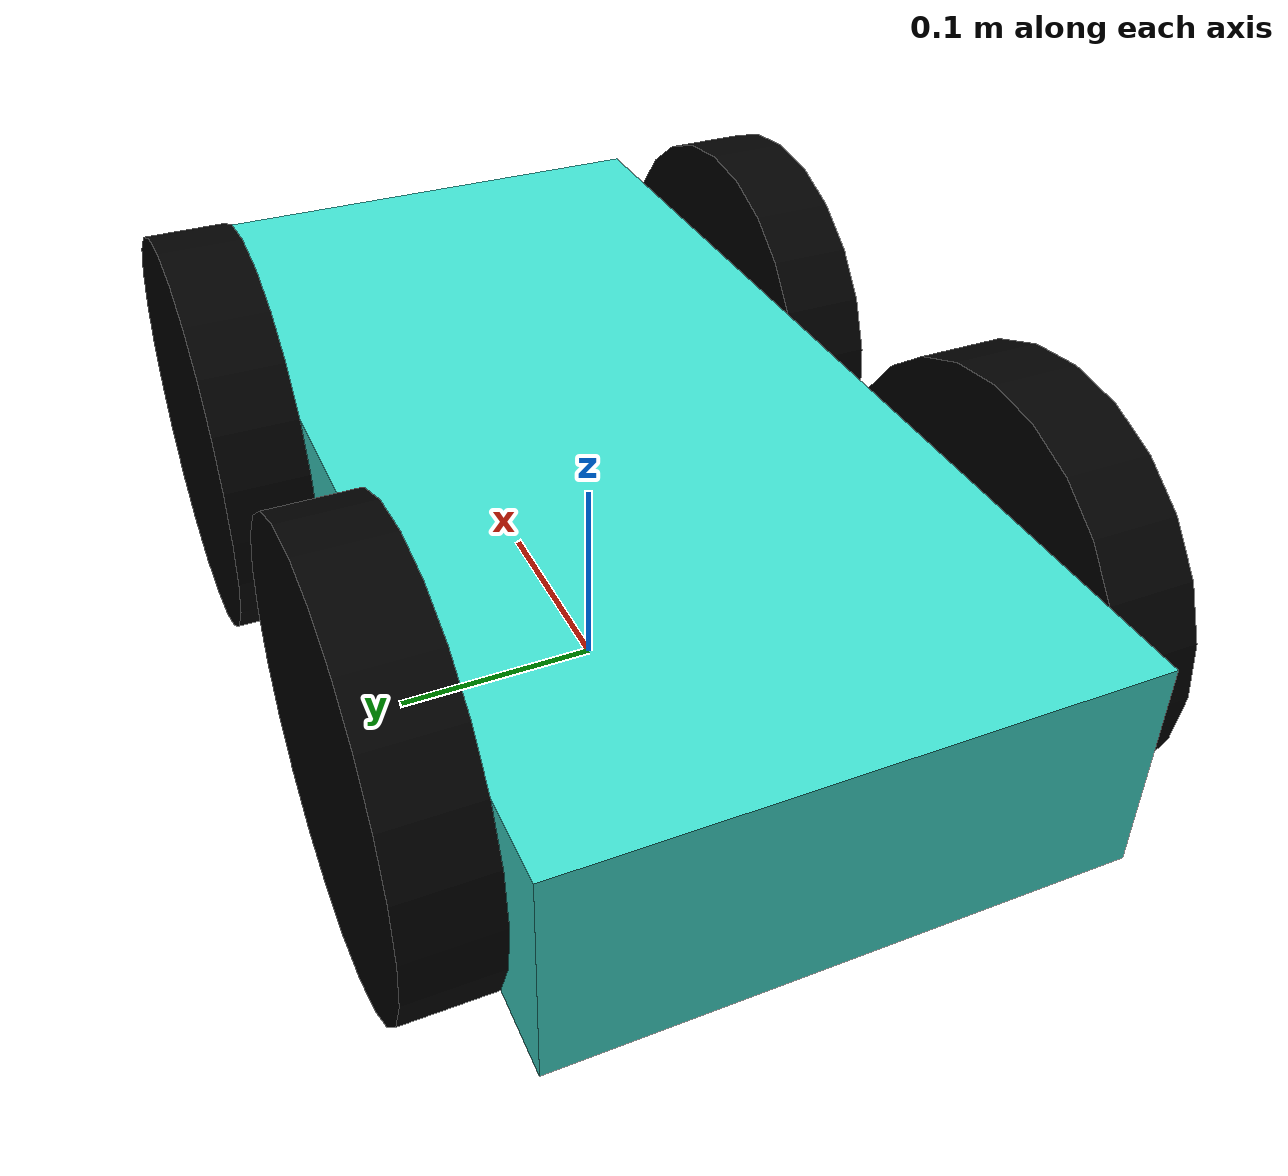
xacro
<?xml version="1.0" encoding="UTF-8"?>

<robot name="navbot" xmlns:xacro="https://www.ros.org/wiki/xacro">

    <xacro:include filename="helper.xacro"/>
    <!-- Base Link-->
    <link name="base_link"/>

    <!-- Chassis Link-->
    <joint name="chassis_joint" type="fixed">
        <parent link="base_link"/>
        <child link="chassis_link"/>
        <origin xyz= "0 0 0.1" rpy="0 0 0"/>
    </joint>

    <link name="chassis_link">
        <visual>
            <origin xyz= "0 0 0" rpy="0 0 0"/>
            <geometry>
                <box size = "0.5 0.25 0.1"/>
            </geometry>
            <material name="turquoise"/>
        </visual>
        <collision>
            <origin xyz= "0 0 0" rpy="0 0 0"/>
            <geometry>
                <box size = "0.5 0.25 0.1"/>
            </geometry>
        </collision>
        <xacro:box_inertial mass= "0.5" x="0.5" y="0.25" z="0.1">
            <origin xyz= "0 0 0" rpy="0 0 0"/>
        </xacro:box_inertial>
    </link>
    <gazebo reference= "chassis_link">
        <material>Gazebo/Turquoise</material>
    </gazebo>

    <!--Front left wheel Link-->

    <joint name="fl_wheel_joint" type="continuous">
        <parent link="chassis_link" />
        <child link="fl_wheel_link" />
        <origin xyz="0.125 0.145 0" rpy="-${pi/2} 0 0"/>
        <axis xyz="0 0 1"/>
    </joint>

    <link name="fl_wheel_link">
        <visual>
            <geometry>
                <cylinder radius="0.1" length="0.04"/>
            </geometry>
            <material name="black"/>
        </visual>
        <collision>
            <geometry>
                <cylinder radius="0.1" length="0.04"/>
            </geometry>
        </collision>
        <xacro:cylinder_inertial mass="0.1" radius="0.1" length="0.04">
            <origin xyz= "0 0 0" rpy="0 0 0"/>
        </xacro:cylinder_inertial>
    </link>
    <gazebo reference= "fl_wheel_link">
        <material>Gazebo/Black</material>
    </gazebo>

    <!--Front right wheel Link-->

    <joint name="fr_wheel_joint" type="continuous">
        <parent link="chassis_link" />
        <child link="fr_wheel_link" />
        <origin xyz="0.125 -0.145 0" rpy="${pi/2} 0 0"/>
        <axis xyz="0 0 -1"/>
    </joint>

    <link name="fr_wheel_link">
        <visual>
            <geometry>
                <cylinder radius="0.1" length="0.04"/>
            </geometry>
            <material name="black"/>
        </visual>
        <collision>
            <geometry>
                <cylinder radius="0.1" length="0.04"/>
            </geometry>
        </collision>
        <xacro:cylinder_inertial mass="0.1" radius="0.1" length="0.04">
            <origin xyz= "0 0 0" rpy="0 0 0"/>
        </xacro:cylinder_inertial>
    </link>
    <gazebo reference= "fr_wheel_link">
        <material>Gazebo/Black</material>
    </gazebo>

    <!--Back left wheel Link-->

    <joint name="bl_wheel_joint" type="continuous">
        <parent link="chassis_link" />
        <child link="bl_wheel_link" />
        <origin xyz="-0.125 0.145 0" rpy="-${pi/2} 0 0"/>
        <axis xyz="0 0 1"/>
    </joint>

    <link name="bl_wheel_link">
        <visual>
            <geometry>
                <cylinder radius="0.1" length="0.04"/>
            </geometry>
            <material name="black"/>
        </visual>
        <collision>
            <geometry>
                <cylinder radius="0.1" length="0.04"/>
            </geometry>
        </collision>
        <xacro:cylinder_inertial mass="0.1" radius="0.1" length="0.04">
            <origin xyz= "0 0 0" rpy="0 0 0"/>
        </xacro:cylinder_inertial>
    </link>
    <gazebo reference= "bl_wheel_link">
        <material>Gazebo/Black</material>
    </gazebo>

    <!--Back right wheel Link-->

    <joint name="br_wheel_joint" type="continuous">
        <parent link="chassis_link" />
        <child link="br_wheel_link" />
        <origin xyz="-0.125 -0.145 0" rpy="${pi/2} 0 0"/>
        <axis xyz="0 0 -1"/>
    </joint>

    <link name="br_wheel_link">
        <visual>
            <geometry>
                <cylinder radius="0.1" length="0.04"/>
            </geometry>
            <material name="black"/>
        </visual>
        <collision>
            <geometry>
                <cylinder radius="0.1" length="0.04"/>
            </geometry>
        </collision>
        <xacro:cylinder_inertial mass="0.1" radius="0.1" length="0.04">
            <origin xyz= "0 0 0" rpy="0 0 0"/>
        </xacro:cylinder_inertial>
    </link>
    <gazebo reference= "br_wheel_link">
        <material>Gazebo/Black</material>
    </gazebo>

</robot>

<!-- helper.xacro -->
<!--File with macros for interia and materials-->

<robot xmlns:xacro="htts://ros.org/wiki/xacro">

<!--Colours for the different bodies-->
    <material name="turquoise">
        <color rgba="0.25 0.88 0.82 1.0"/>
    </material>

    <material name="white">
        <color rgba="1.0 1.0 1.0 1.0"/>
    </material>

    <material name="black">
        <color rgba="0.0 0.0 0.0 1.0"/>
    </material>

<!--Cylinder Macro for wheel-->
    <xacro:macro name="cylinder_inertial" params="mass radius length *origin">
        <inertial>
            <mass value="${mass}"/>
            <xacro:insert_block name="origin"/>
            <inertia
                ixx="${(1/12)*mass*(3*radius*radius + length*length)}"
                iyy="${(1/12)*mass*(3*radius*radius + length*length)}"
                izz="${0.5*mass*radius*radius}"
                ixy="0.0" ixz="0.0" iyz="0.0"/>
        </inertial>
    </xacro:macro>

<!--Box macro for body-->
    <xacro:macro name="box_inertial" params="mass x y z *origin">
        <inertial>
            <mass value="${mass}"/>
            <xacro:insert_block name="origin"/>
            <inertia
                ixx="${(1/12.0)*mass*(y*y + z*z)}"
                iyy="${(1/12.0)*mass*(x*x + z*z)}"
                izz="${(1/12.0)*mass*(x*x + y*y)}"
                ixy="0.0" ixz="0.0" iyz="0.0"/>
        </inertial>
    </xacro:macro>

</robot>
